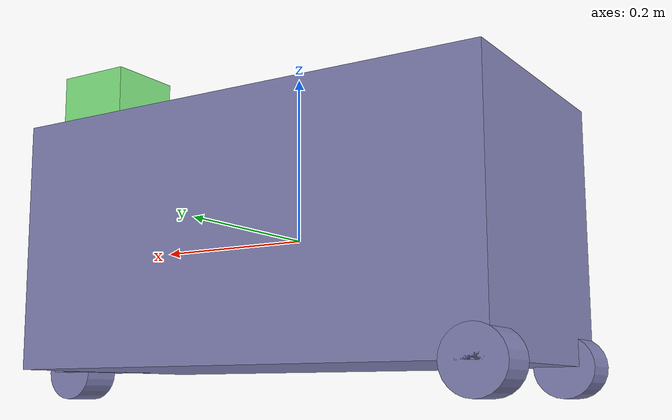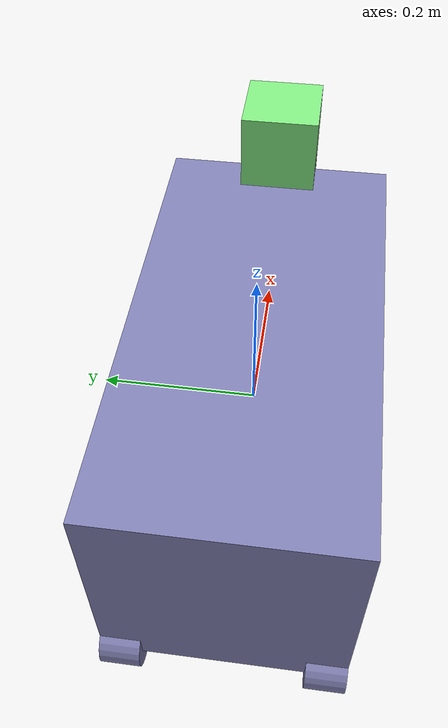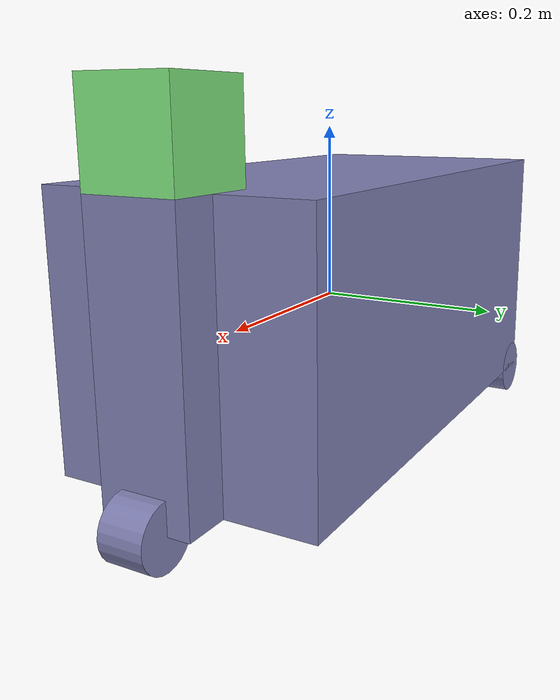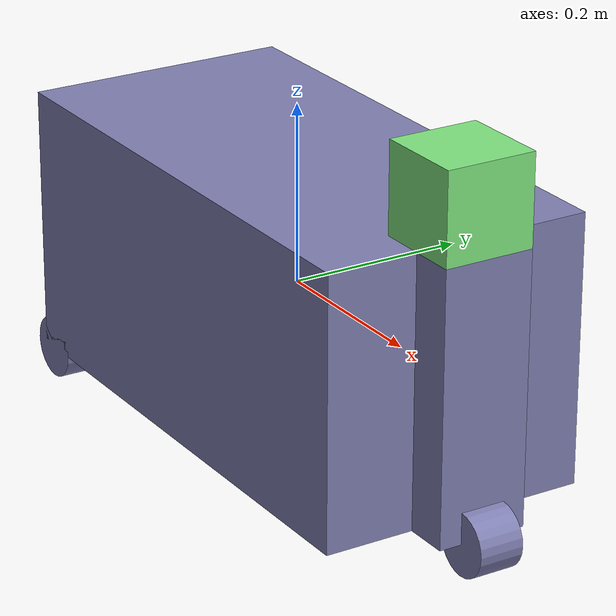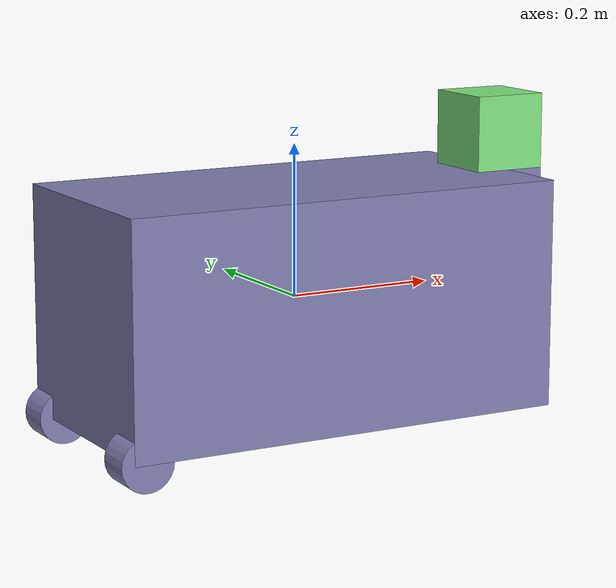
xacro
<?xml version="1.0"?>
<robot name="turtle" xmlns:xacro="http://www.ros.org/wiki/xacro">

    <!-- Define useful macros :) -->

    <xacro:macro name="xlink" params="name mass ixx:=0 iyy:=0 izz:=0 ixy:=0 ixz:=0 iyz:=0 *geometry">
        <link name="${name}">
            <visual>
                <geometry>
                    <xacro:insert_block name="geometry" />
                </geometry>
                <material name="paint">
                    <color rgba="0.5 0.5 0.7 1.0" />
                </material>
            </visual>
            <collision>
                <geometry>
                    <xacro:insert_block name="geometry" />
                </geometry>
            </collision>

            <inertial>
                <mass value="${mass}" />
                <inertia ixx="${ixx}" iyy="${iyy}" izz="${izz}"
                        ixy="${ixy}"     ixz="${ixz}"      iyz="${iyz}" />
            </inertial>
        </link>
    </xacro:macro>

    <xacro:macro name="xtransmission" params="name motor_name hardware_interface joint">
        <transmission name="${name}">
            <type>transmission_interface/SimpleTransmission</type>
            <joint name="${joint}">
                <hardwareInterface>${hardware_interface}</hardwareInterface>
            </joint>
            <actuator name="${motor_name}">
                <hardwareInterface>${hardware_interface}</hardwareInterface>
                <mechanicalReduction>1</mechanicalReduction>
            </actuator>
        </transmission>
    </xacro:macro>

    <!-- Links -->

    <xacro:xlink name="base_link" mass="1.0" ixx="0.015" iyy="0.0375" izz="0.0375">
        <box size="0.6 0.3 0.3" />
    </xacro:xlink>

    <xacro:xlink name="front_caster" mass="0.1" ixx="0.00083" iyy="0.00083" izz="0.000167">
        <box size="0.1 0.1 0.3" />
    </xacro:xlink>

    <xacro:xlink name="front_wheel" mass="0.1" ixx="5.1458e-5" iyy="5.1458e-5" izz="6.125e-5">
        <cylinder length="0.05" radius="0.035" />
    </xacro:xlink>

    <xacro:xlink name="right_wheel" mass="0.1" ixx="5.1458e-5" iyy="5.1458e-5" izz="6.125e-5">
        <cylinder length="0.05" radius="0.035" />
    </xacro:xlink>

    <xacro:xlink name="left_wheel" mass="0.1" ixx="5.1458e-5" iyy="5.1458e-5" izz="6.125e-5">
        <cylinder length="0.05" radius="0.035" />
    </xacro:xlink>

    <!-- Joints -->

    <joint name="right_wheel_joint" type="continuous">
        <axis xyz="0 0 1" />
        <parent link="base_link" />
        <child link="right_wheel" />
        <origin rpy="-1.5708 0 0" xyz="-0.2825 -0.125 -0.15" />
    </joint>

    <joint name="front_caster_joint" type="continuous">
        <axis xyz="0 0 1" />
        <parent link="base_link" />
        <child link="front_caster" />
        <origin rpy="0 0 0" xyz="0.3 0 0" />
    </joint>

    <joint name="front_wheel_joint" type="continuous">
        <axis xyz="0 0 1" />
        <parent link="front_caster" />
        <child link="front_wheel" />
        <origin rpy="-1.5708 0 0" xyz="0.05 0 -0.15" />
    </joint>

    <joint name="left_wheel_joint" type="continuous">
        <axis xyz="0 0 1" />
        <parent link="base_link" />
        <child link="left_wheel" />
        <origin rpy="-1.5708 0 0" xyz="-0.2825 0.125 -0.15" />
    </joint>

    <!-- Transmissions -->
    <xacro:xtransmission name="trans0" motor_name="motor0" hardware_interface="PositionJointInterface" joint="front_caster_joint" />
    <xacro:xtransmission name="trans1" motor_name="motor1" hardware_interface="VelocityJointInterface" joint="front_wheel_joint" />
    <xacro:xtransmission name="trans2" motor_name="motor2" hardware_interface="VelocityJointInterface" joint="left_wheel_joint" />
    <xacro:xtransmission name="trans3" motor_name="motor3" hardware_interface="VelocityJointInterface" joint="right_wheel_joint" />

    <!-- Laser -->
    <link name="laser_link">
        <collision>
            <origin xyz="0 0 0" rpy="0 0 0" />
            <geometry>
                <box size="0.1 0.1 0.1" />
            </geometry>
        </collision>
        <visual>
            <origin xyz="0 0 0" rpy="0 0 0" />
            <geometry>
                <box size="0.1 0.1 0.1" />
            </geometry>
            <material name="laser_paint">
                <color rgba="0.5 0.9 0.5 1.0" />
            </material>
        </visual>
        <inertial>
            <mass value="1e-5" />
            <origin xyz="0 0 0" rpy="0 0 0" />
            <inertia ixx="1e-6" ixy="0" ixz="0" iyy="1e-6" iyz="0" izz="1e-6" />
        </inertial>
    </link>

    <joint name="laser_joint" type="fixed">
        <axis xyz="0 1 0" />
        <origin xyz="0 0 0.2" rpy="0 0 0" />
        <parent link="front_caster" />
        <child link="laser_link" />
    </joint>

    <gazebo>
        <plugin name="gazebo_ros_control" filename="libgazebo_ros_control.so"></plugin>
    </gazebo>

    <gazebo reference="laser_link">
        <sensor type="gpu_ray" name="laser">
            <pose> 0 0 0 0 0 0</pose>
            <visualize>false</visualize>
            <update_rate>2</update_rate>
            <ray>
                <scan>
                    <horizontal>
                        <samples>10</samples>
                        <resolution>1</resolution>
                        <min_angle>-1.570796</min_angle>
                        <max_angle>1.570796</max_angle>
                    </horizontal>
                </scan>
                <range>
                    <min>0.10</min>
                    <max>30.0</max>
                    <resolution>0.01</resolution>
                </range>
            </ray>
            <plugin name="gpu_laser" filename="libgazebo_ros_gpu_laser.so">
                <topicName>/laser_scan</topicName>
                <frameName>laser_link</frameName>
            </plugin>
        </sensor>
    </gazebo>
</robot>
